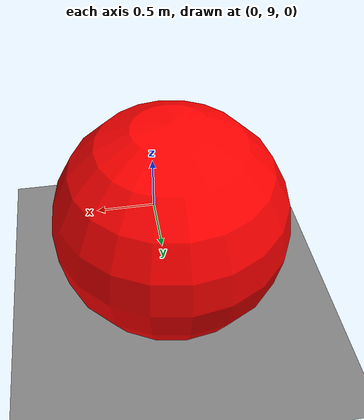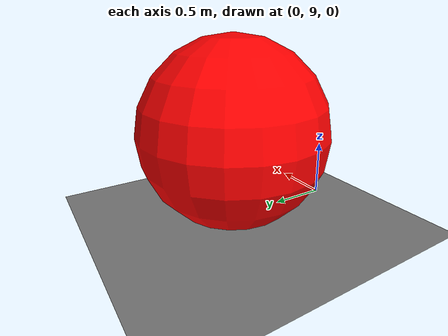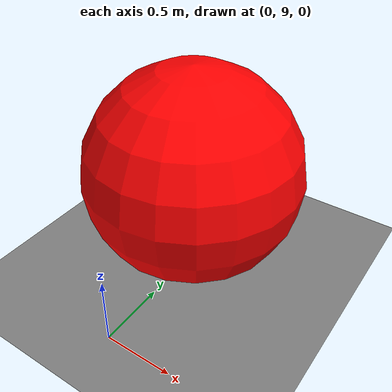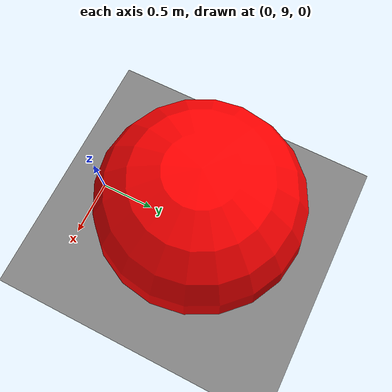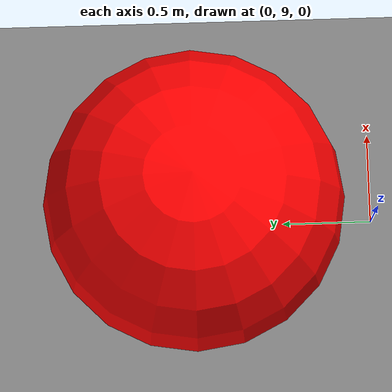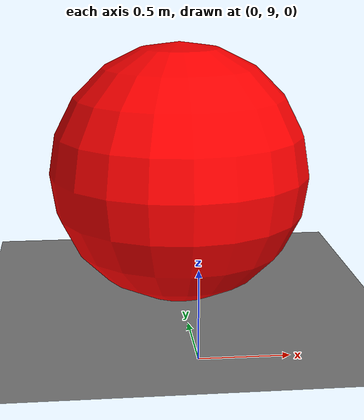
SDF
<?xml version="1.0" encoding="UTF-8"?>
<sdf version="1.9">
  <world name="red_target">

    <physics type="ode">
      <max_step_size>0.004</max_step_size>
      <real_time_factor>1.0</real_time_factor>
      <real_time_update_rate>250</real_time_update_rate>
    </physics>

    <plugin name="gz::sim::systems::Physics" filename="gz-sim-physics-system"/>
    <plugin name="gz::sim::systems::UserCommands" filename="gz-sim-user-commands-system"/>
    <plugin name="gz::sim::systems::SceneBroadcaster" filename="gz-sim-scene-broadcaster-system"/>
    <plugin name="gz::sim::systems::Contact" filename="gz-sim-contact-system"/>
    <plugin name="gz::sim::systems::Imu" filename="gz-sim-imu-system"/>
    <plugin name="gz::sim::systems::AirPressure" filename="gz-sim-air-pressure-system"/>
    <plugin name="gz::sim::systems::ApplyLinkWrench" filename="gz-sim-apply-link-wrench-system"/>
    <plugin name="gz::sim::systems::NavSat" filename="gz-sim-navsat-system"/>
    <plugin name="gz::sim::systems::Sensors" filename="gz-sim-sensors-system">
      <render_engine>ogre2</render_engine>
    </plugin>

    <gravity>0 0 -9.8</gravity>
    <magnetic_field>6e-06 2.3e-05 -4.2e-05</magnetic_field>
    <atmosphere type="adiabatic"/>

    <scene>
      <grid>false</grid>
      <ambient>0.4 0.4 0.4 1</ambient>
      <background>0.7 0.7 0.7 1</background>
      <shadows>true</shadows>
    </scene>

    <light name="sun" type="directional">
      <pose>0 0 10 0.3 0.2 0</pose>
      <cast_shadows>true</cast_shadows>
      <diffuse>0.8 0.8 0.8 1</diffuse>
      <specular>0.2 0.2 0.2 1</specular>
      <direction>-0.3 -0.3 -1</direction>
    </light>

    <model name="ground">
      <static>true</static>
      <link name="link">
        <collision name="collision">
          <geometry>
            <plane>
              <normal>0 0 1</normal>
              <size>30 30</size>
            </plane>
          </geometry>
        </collision>
        <visual name="visual">
          <geometry>
            <plane>
              <normal>0 0 1</normal>
              <size>30 30</size>
            </plane>
          </geometry>
          <material>
            <ambient>0.5 0.5 0.5 1</ambient>
            <diffuse>0.5 0.5 0.5 1</diffuse>
          </material>
        </visual>
      </link>
    </model>

    <!-- West -X : Sphere -->
    <model name="red_target_west">
      <static>true</static>
      <pose>0 10 0.8 0 0 0</pose>
      <link name="link">
        <collision name="collision">
          <geometry>
            <sphere>
              <radius>0.8</radius>
            </sphere>
          </geometry>
        </collision>
        <visual name="visual">
          <geometry>
            <sphere>
              <radius>0.8</radius>
            </sphere>
          </geometry>
          <material>
            <ambient>1 0 0 1</ambient>
            <diffuse>1 0 0 1</diffuse>
            <specular>0.2 0.2 0.2 1</specular>
          </material>
        </visual>
      </link>
    </model>

  </world>
</sdf>
